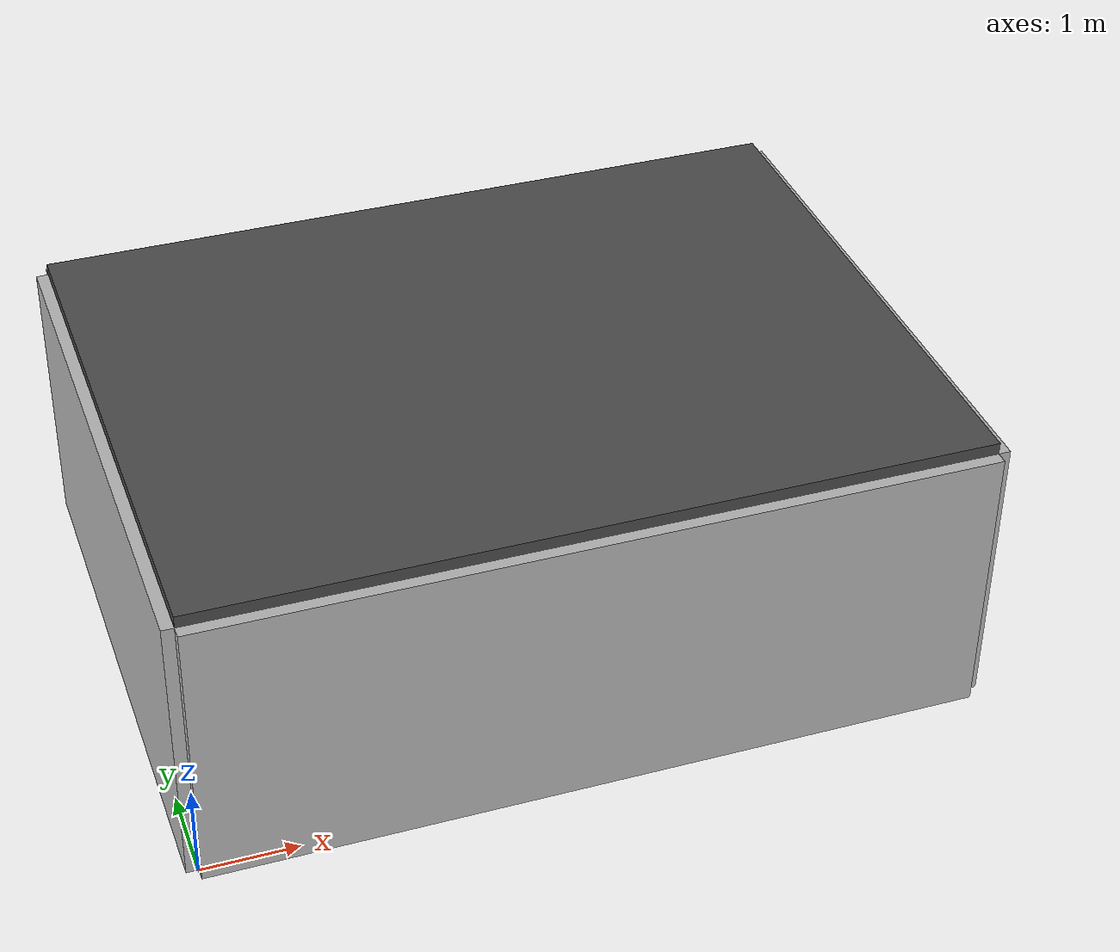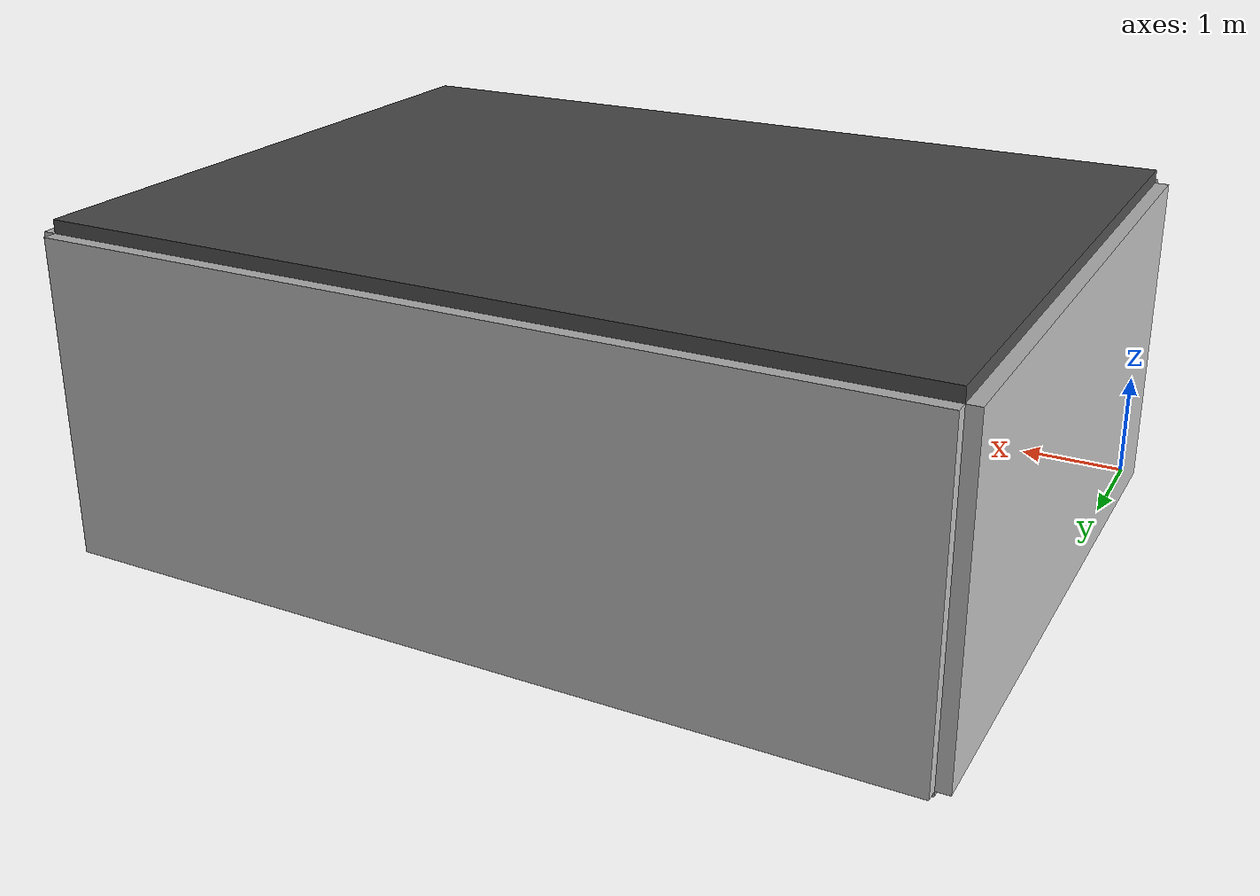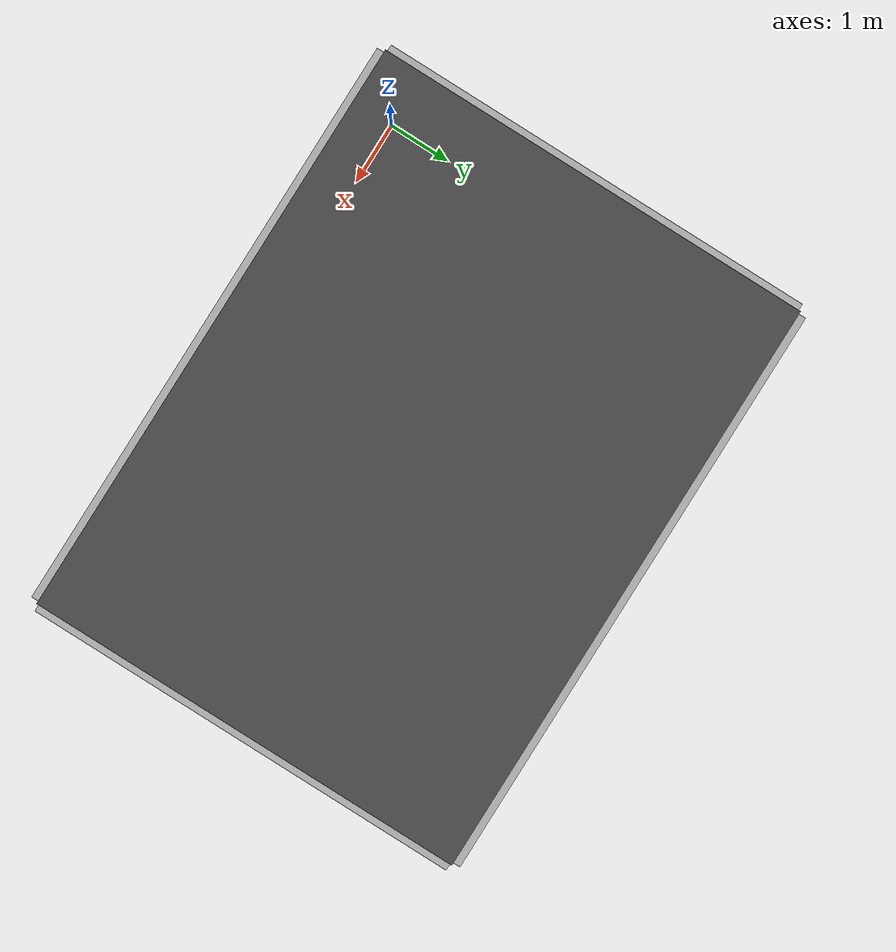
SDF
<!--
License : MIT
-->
<?xml version="1.0" ?>
<sdf version="1.7">
    <world name="normal_shelter">

        <physics name="default_physics" type="ode">
            <real_time_update_rate>1000</real_time_update_rate>
            <max_step_size>0.001</max_step_size>
        </physics>

        <light name="sun" type="directional">
            <cast_shadows>true</cast_shadows>
            <pose>0 0 10 0 0 0</pose>
            <diffuse>0.8 0.8 0.8 1</diffuse>
            <specular>0.2 0.2 0.2 1</specular>
            <direction>-0.5 0.1 -0.9</direction>
        </light>

        <!-- Floor -->
        <model name="floor_slab">
            <static>true</static>
            <pose>4 3 0 0 0 0</pose>
            <link name="floor_link">
                <collision name="floor_collision">
                    <geometry><box><size>8.0 6.0 0.10</size></box></geometry>
                </collision>
                <visual name="floor_visual">
                    <geometry><box><size>8.0 6.0 0.10</size></box></geometry>
                    <material>
                        <script>
                            <name>Gazebo/Grey</name>
                        </script>
                    </material>
                </visual>
            </link>
        </model>

        <!-- North Wall — INTACT -->
        <model name="north_wall">
            <static>true</static>
            <pose>4.0 6.0 1.5 0 0 0</pose>
            <link name="link">
                <collision name="col"><geometry><box><size>8.0 0.25 3.0</size></box></geometry></collision>
                <visual name="vis">
                    <geometry><box><size>8.0 0.25 3.0</size></box></geometry>
                    <material><script><name>Gazebo/Concrete</name></script></material>
                </visual>
            </link>
        </model>

        <!-- South Wall — INTACT -->
        <model name="south_wall">
            <static>true</static>
            <pose>4.0 0.0 1.5 0 0 0</pose>
            <link name="link">
                <collision name="col"><geometry><box><size>8.0 0.25 3.0</size></box></geometry></collision>
                <visual name="vis">
                    <geometry><box><size>8.0 0.25 3.0</size></box></geometry>
                    <material><script><name>Gazebo/Concrete</name></script></material>
                </visual>
            </link>
        </model>

        <!-- East Wall — INTACT -->
        <model name="east_wall">
            <static>true</static>
            <pose>8.0 3.0 1.5 0 0 0</pose>
            <link name="link">
                <collision name="col"><geometry><box><size>0.25 6.0 3.0</size></box></geometry></collision>
                <visual name="vis">
                    <geometry><box><size>0.25 6.0 3.0</size></box></geometry>
                    <material><script><name>Gazebo/Concrete</name></script></material>
                </visual>
            </link>
        </model>

        <!-- West Wall — INTACT -->
        <model name="west_wall">
            <static>true</static>
            <pose>0.0 3.0 1.5 0 0 0</pose>
            <link name="link">
                <collision name="col"><geometry><box><size>0.25 6.0 3.0</size></box></geometry></collision>
                <visual name="vis">
                    <geometry><box><size>0.25 6.0 3.0</size></box></geometry>
                    <material><script><name>Gazebo/Concrete</name></script></material>
                </visual>
            </link>
        </model>

        <!-- Complete Roof — NO HOLES -->
        <model name="roof">
            <static>true</static>
            <pose>4.0 3.0 3.05 0 0 0</pose>
            <link name="link">
                <collision name="col"><geometry><box><size>8.0 6.0 0.15</size></box></geometry></collision>
                <visual name="vis">
                    <geometry><box><size>8.0 6.0 0.15</size></box></geometry>
                    <material><script><name>Gazebo/DarkGrey</name></script></material>
                </visual>
            </link>
        </model>

        <scene>
            <ambient>0.6 0.6 0.6 1</ambient>
            <background>0.7 0.8 0.9 1</background>
            <shadows>true</shadows>
        </scene>

    </world>
</sdf>
